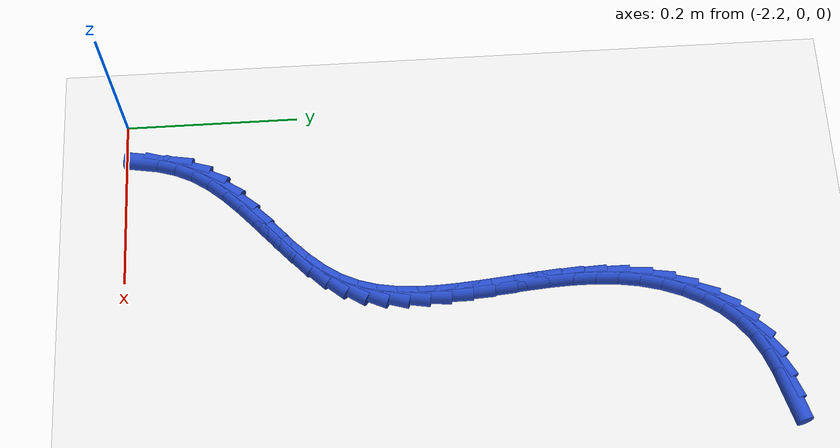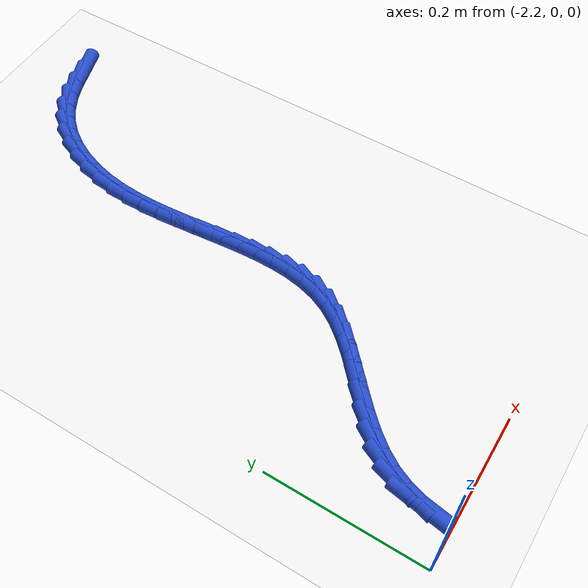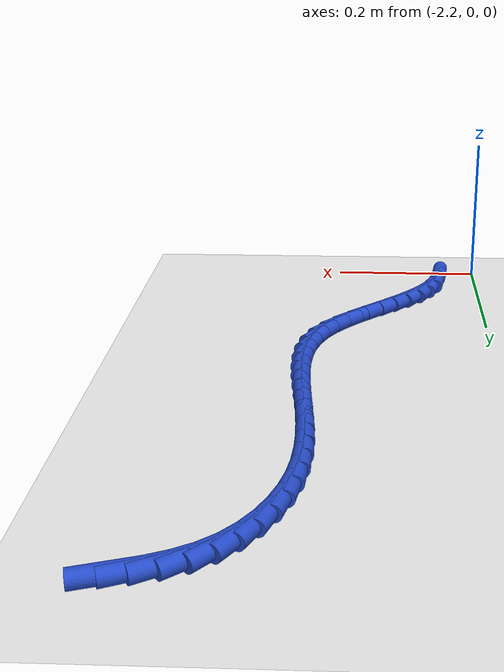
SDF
<sdf version="1.6">
 <world name="default">
  <model name="ground_plane">
   <static>1</static>
   <link name="link">
    <collision name="collision">
     <geometry><plane><normal>0 0 1</normal><size>100 100</size></plane></geometry>
     <surface><friction><ode><mu>100</mu><mu2>50</mu2></ode></friction></surface>
    </collision>
    <visual name="visual">
     <cast_shadows>0</cast_shadows>
     <geometry><plane><normal>0 0 1</normal><size>100 100</size></plane></geometry>
     <material>
      <script><uri>file://media/materials/scripts/gazebo.material</uri><name>Gazebo/WhiteGlow</name></script>
     </material>
    </visual>
   </link>
  </model>
  <model name="line">
   <link name="link_106">
    <pose>-1.8262738007283077 0.7350228807404822 0.01 0 1.57 0.2931317582532983</pose>
    <collision name="collision">
     <geometry><cylinder><radius>0.01</radius><length>0.08</length></cylinder></geometry>
    </collision>
    <visual name="visual">
     <material>
      <script><name>Gazebo/Blue</name><uri>file://media/materials/scripts/gazebo.material</uri></script>
     </material>
     <geometry><cylinder><radius>0.01</radius><length>0.08</length></cylinder></geometry>
    </visual>
   </link>
   <link name="link_107">
    <pose>-1.8500432478901638 0.7278486286046311 0.01 0 1.57 0.3802793211672357</pose>
    <collision name="collision">
     <geometry><cylinder><radius>0.01</radius><length>0.08</length></cylinder></geometry>
    </collision>
    <visual name="visual">
     <material>
      <script><name>Gazebo/Blue</name><uri>file://media/materials/scripts/gazebo.material</uri></script>
     </material>
     <geometry><cylinder><radius>0.01</radius><length>0.08</length></cylinder></geometry>
    </visual>
   </link>
   <link name="link_108">
    <pose>-1.87254807759557 0.7188526236165151 0.01 0 1.57 0.5021283102640395</pose>
    <collision name="collision">
     <geometry><cylinder><radius>0.01</radius><length>0.08</length></cylinder></geometry>
    </collision>
    <visual name="visual">
     <material>
      <script><name>Gazebo/Blue</name><uri>file://media/materials/scripts/gazebo.material</uri></script>
     </material>
     <geometry><cylinder><radius>0.01</radius><length>0.08</length></cylinder></geometry>
    </visual>
   </link>
   <link name="link_109">
    <pose>-1.8933521143064567 0.7074297676624985 0.01 0 1.57 0.6584751235820842</pose>
    <collision name="collision">
     <geometry><cylinder><radius>0.01</radius><length>0.08</length></cylinder></geometry>
    </collision>
    <visual name="visual">
     <material>
      <script><name>Gazebo/Blue</name><uri>file://media/materials/scripts/gazebo.material</uri></script>
     </material>
     <geometry><cylinder><radius>0.01</radius><length>0.08</length></cylinder></geometry>
    </visual>
   </link>
   <link name="link_110">
    <pose>-1.912022672366131 0.6929850209946814 0.01 0 1.57 0.8247620683680976</pose>
    <collision name="collision">
     <geometry><cylinder><radius>0.01</radius><length>0.08</length></cylinder></geometry>
    </collision>
    <visual name="visual">
     <material>
      <script><name>Gazebo/Blue</name><uri>file://media/materials/scripts/gazebo.material</uri></script>
     </material>
     <geometry><cylinder><radius>0.01</radius><length>0.08</length></cylinder></geometry>
    </visual>
   </link>
   <link name="link_111">
    <pose>-1.928287694915101 0.6753863003425892 0.01 0 1.57 0.9719357396712952</pose>
    <collision name="collision">
     <geometry><cylinder><radius>0.01</radius><length>0.08</length></cylinder></geometry>
    </collision>
    <visual name="visual">
     <material>
      <script><name>Gazebo/Blue</name><uri>file://media/materials/scripts/gazebo.material</uri></script>
     </material>
     <geometry><cylinder><radius>0.01</radius><length>0.08</length></cylinder></geometry>
    </visual>
   </link>
   <link name="link_112">
    <pose>-1.9420994982895001 0.6551481999063452 0.01 0 1.57 1.1010658770075152</pose>
    <collision name="collision">
     <geometry><cylinder><radius>0.01</radius><length>0.08</length></cylinder></geometry>
    </collision>
    <visual name="visual">
     <material>
      <script><name>Gazebo/Blue</name><uri>file://media/materials/scripts/gazebo.material</uri></script>
     </material>
     <geometry><cylinder><radius>0.01</radius><length>0.08</length></cylinder></geometry>
    </visual>
   </link>
   <link name="link_113">
    <pose>-1.9534270856727056 0.632833407902544 0.01 0 1.57 1.216574392342771</pose>
    <collision name="collision">
     <geometry><cylinder><radius>0.01</radius><length>0.08</length></cylinder></geometry>
    </collision>
    <visual name="visual">
     <material>
      <script><name>Gazebo/Blue</name><uri>file://media/materials/scripts/gazebo.material</uri></script>
     </material>
     <geometry><cylinder><radius>0.01</radius><length>0.08</length></cylinder></geometry>
    </visual>
   </link>
   <link name="link_114">
    <pose>-1.9622394602480935 0.6090046125477802 0.01 0 1.57 1.3231136990636463</pose>
    <collision name="collision">
     <geometry><cylinder><radius>0.01</radius><length>0.08</length></cylinder></geometry>
    </collision>
    <visual name="visual">
     <material>
      <script><name>Gazebo/Blue</name><uri>file://media/materials/scripts/gazebo.material</uri></script>
     </material>
     <geometry><cylinder><radius>0.01</radius><length>0.08</length></cylinder></geometry>
    </visual>
   </link>
   <link name="link_115">
    <pose>-1.9685057628454266 0.5842243663478205 0.01 0 1.57 1.4217417044040626</pose>
    <collision name="collision">
     <geometry><cylinder><radius>0.01</radius><length>0.08</length></cylinder></geometry>
    </collision>
    <visual name="visual">
     <material>
      <script><name>Gazebo/Blue</name><uri>file://media/materials/scripts/gazebo.material</uri></script>
     </material>
     <geometry><cylinder><radius>0.01</radius><length>0.08</length></cylinder></geometry>
    </visual>
   </link>
   <link name="link_116">
    <pose>-1.9723010548651658 0.5589507906756813 0.01 0 1.57 1.5047076153524919</pose>
    <collision name="collision">
     <geometry><cylinder><radius>0.01</radius><length>0.08</length></cylinder></geometry>
    </collision>
    <visual name="visual">
     <material>
      <script><name>Gazebo/Blue</name><uri>file://media/materials/scripts/gazebo.material</uri></script>
     </material>
     <geometry><cylinder><radius>0.01</radius><length>0.08</length></cylinder></geometry>
    </visual>
   </link>
   <link name="link_117">
    <pose>-1.9739953672865096 0.5333511851401824 0.01 0 1.57 1.5702420936253383</pose>
    <collision name="collision">
     <geometry><cylinder><radius>0.01</radius><length>0.08</length></cylinder></geometry>
    </collision>
    <visual name="visual">
     <material>
      <script><name>Gazebo/Blue</name><uri>file://media/materials/scripts/gazebo.material</uri></script>
     </material>
     <geometry><cylinder><radius>0.01</radius><length>0.08</length></cylinder></geometry>
    </visual>
   </link>
   <link name="link_118">
    <pose>-1.9740096712477835 0.5075426255033011 0.01 0 1.57 -1.5227748838769783</pose>
    <collision name="collision">
     <geometry><cylinder><radius>0.01</radius><length>0.08</length></cylinder></geometry>
    </collision>
    <visual name="visual">
     <material>
      <script><name>Gazebo/Blue</name><uri>file://media/materials/scripts/gazebo.material</uri></script>
     </material>
     <geometry><cylinder><radius>0.01</radius><length>0.08</length></cylinder></geometry>
    </visual>
   </link>
   <link name="link_119">
    <pose>-1.972764937887312 0.4816421875270134 0.01 0 1.57 -1.490475581346175</pose>
    <collision name="collision">
     <geometry><cylinder><radius>0.01</radius><length>0.08</length></cylinder></geometry>
    </collision>
    <visual name="visual">
     <material>
      <script><name>Gazebo/Blue</name><uri>file://media/materials/scripts/gazebo.material</uri></script>
     </material>
     <geometry><cylinder><radius>0.01</radius><length>0.08</length></cylinder></geometry>
    </visual>
   </link>
   <link name="link_120">
    <pose>-1.9706821383434205 0.45576694697329595 0.01 0 1.57 -1.4739526781380459</pose>
    <collision name="collision">
     <geometry><cylinder><radius>0.01</radius><length>0.08</length></cylinder></geometry>
    </collision>
    <visual name="visual">
     <material>
      <script><name>Gazebo/Blue</name><uri>file://media/materials/scripts/gazebo.material</uri></script>
     </material>
     <geometry><cylinder><radius>0.01</radius><length>0.08</length></cylinder></geometry>
    </visual>
   </link>
   <link name="link_121">
    <pose>-1.9681822437544352 0.43003397960412554 0.01 0 1.57 -1.4731236638331757</pose>
    <collision name="collision">
     <geometry><cylinder><radius>0.01</radius><length>0.08</length></cylinder></geometry>
    </collision>
    <visual name="visual">
     <material>
      <script><name>Gazebo/Blue</name><uri>file://media/materials/scripts/gazebo.material</uri></script>
     </material>
     <geometry><cylinder><radius>0.01</radius><length>0.08</length></cylinder></geometry>
    </visual>
   </link>
   <link name="link_122">
    <pose>-1.9656862252586809 0.4045603611814783 0.01 0 1.57 -1.4884569037032096</pose>
    <collision name="collision">
     <geometry><cylinder><radius>0.01</radius><length>0.08</length></cylinder></geometry>
    </collision>
    <visual name="visual">
     <material>
      <script><name>Gazebo/Blue</name><uri>file://media/materials/scripts/gazebo.material</uri></script>
     </material>
     <geometry><cylinder><radius>0.01</radius><length>0.08</length></cylinder></geometry>
    </visual>
   </link>
   <link name="link_123">
    <pose>-1.9636150539944828 0.37946316746733144 0.01 0 1.57 -1.521033827098376</pose>
    <collision name="collision">
     <geometry><cylinder><radius>0.01</radius><length>0.08</length></cylinder></geometry>
    </collision>
    <visual name="visual">
     <material>
      <script><name>Gazebo/Blue</name><uri>file://media/materials/scripts/gazebo.material</uri></script>
     </material>
     <geometry><cylinder><radius>0.01</radius><length>0.08</length></cylinder></geometry>
    </visual>
   </link>
   <link name="link_124">
    <pose>-1.9623897011001663 0.3548594742236613 0.01 0 1.57 1.5690693076387285</pose>
    <collision name="collision">
     <geometry><cylinder><radius>0.01</radius><length>0.08</length></cylinder></geometry>
    </collision>
    <visual name="visual">
     <material>
      <script><name>Gazebo/Blue</name><uri>file://media/materials/scripts/gazebo.material</uri></script>
     </material>
     <geometry><cylinder><radius>0.01</radius><length>0.08</length></cylinder></geometry>
    </visual>
   </link>
   <link name="link_125">
    <pose>-1.962431137714057 0.3308663572124445 0.01 0 1.57 1.4966080973572227</pose>
    <collision name="collision">
     <geometry><cylinder><radius>0.01</radius><length>0.08</length></cylinder></geometry>
    </collision>
    <visual name="visual">
     <material>
      <script><name>Gazebo/Blue</name><uri>file://media/materials/scripts/gazebo.material</uri></script>
     </material>
     <geometry><cylinder><radius>0.01</radius><length>0.08</length></cylinder></geometry>
    </visual>
   </link>
   <link name="link_126">
    <pose>-1.9641603349744805 0.3076008921956573 0.01 0 1.57 1.4012618239809915</pose>
    <collision name="collision">
     <geometry><cylinder><radius>0.01</radius><length>0.08</length></cylinder></geometry>
    </collision>
    <visual name="visual">
     <material>
      <script><name>Gazebo/Blue</name><uri>file://media/materials/scripts/gazebo.material</uri></script>
     </material>
     <geometry><cylinder><radius>0.01</radius><length>0.08</length></cylinder></geometry>
    </visual>
   </link>
   <link name="link_127">
    <pose>-1.9679982640197615 0.2851801549352769 0.01 0 1.57 1.282336976577405</pose>
    <collision name="collision">
     <geometry><cylinder><radius>0.01</radius><length>0.08</length></cylinder></geometry>
    </collision>
    <visual name="visual">
     <material>
      <script><name>Gazebo/Blue</name><uri>file://media/materials/scripts/gazebo.material</uri></script>
     </material>
     <geometry><cylinder><radius>0.01</radius><length>0.08</length></cylinder></geometry>
    </visual>
   </link>
   <link name="link_128">
    <pose>-1.9743658959882264 0.26372122119327973 0.01 0 1.57 1.141948911566661</pose>
    <collision name="collision">
     <geometry><cylinder><radius>0.01</radius><length>0.08</length></cylinder></geometry>
    </collision>
    <visual name="visual">
     <material>
      <script><name>Gazebo/Blue</name><uri>file://media/materials/scripts/gazebo.material</uri></script>
     </material>
     <geometry><cylinder><radius>0.01</radius><length>0.08</length></cylinder></geometry>
    </visual>
   </link>
   <link name="link_129">
    <pose>-1.9836842020181993 0.24334116673164213 0.01 0 1.57 0.9922831039997676</pose>
    <collision name="collision">
     <geometry><cylinder><radius>0.01</radius><length>0.08</length></cylinder></geometry>
    </collision>
    <visual name="visual">
     <material>
      <script><name>Gazebo/Blue</name><uri>file://media/materials/scripts/gazebo.material</uri></script>
     </material>
     <geometry><cylinder><radius>0.01</radius><length>0.08</length></cylinder></geometry>
    </visual>
   </link>
   <link name="link_130">
    <pose>-1.9962411709592875 0.22411284638877618 0.01 0 1.57 0.873433738426912</pose>
    <collision name="collision">
     <geometry><cylinder><radius>0.01</radius><length>0.08</length></cylinder></geometry>
    </collision>
    <visual name="visual">
     <material>
      <script><name>Gazebo/Blue</name><uri>file://media/materials/scripts/gazebo.material</uri></script>
     </material>
     <geometry><cylinder><radius>0.01</radius><length>0.08</length></cylinder></geometry>
    </visual>
   </link>
   <link name="link_131">
    <pose>-2.0115424645211335 0.20584896585847867 0.01 0 1.57 0.7944491096093557</pose>
    <collision name="collision">
     <geometry><cylinder><radius>0.01</radius><length>0.08</length></cylinder></geometry>
    </collision>
    <visual name="visual">
     <material>
      <script><name>Gazebo/Blue</name><uri>file://media/materials/scripts/gazebo.material</uri></script>
     </material>
     <geometry><cylinder><radius>0.01</radius><length>0.08</length></cylinder></geometry>
    </visual>
   </link>
   <link name="link_132">
    <pose>-2.0288086045769083 0.18826741259194338 0.01 0 1.57 0.7497823899017034</pose>
    <collision name="collision">
     <geometry><cylinder><radius>0.01</radius><length>0.08</length></cylinder></geometry>
    </collision>
    <visual name="visual">
     <material>
      <script><name>Gazebo/Blue</name><uri>file://media/materials/scripts/gazebo.material</uri></script>
     </material>
     <geometry><cylinder><radius>0.01</radius><length>0.08</length></cylinder></geometry>
    </visual>
   </link>
   <link name="link_133">
    <pose>-2.0472596991813012 0.17108593643229703 0.01 0 1.57 0.7355364735276259</pose>
    <collision name="collision">
     <geometry><cylinder><radius>0.01</radius><length>0.08</length></cylinder></geometry>
    </collision>
    <visual name="visual">
     <material>
      <script><name>Gazebo/Blue</name><uri>file://media/materials/scripts/gazebo.material</uri></script>
     </material>
     <geometry><cylinder><radius>0.01</radius><length>0.08</length></cylinder></geometry>
    </visual>
   </link>
   <link name="link_134">
    <pose>-2.066115856388999 0.1540222872226664 0.01 0 1.57 0.750316608863005</pose>
    <collision name="collision">
     <geometry><cylinder><radius>0.01</radius><length>0.08</length></cylinder></geometry>
    </collision>
    <visual name="visual">
     <material>
      <script><name>Gazebo/Blue</name><uri>file://media/materials/scripts/gazebo.material</uri></script>
     </material>
     <geometry><cylinder><radius>0.01</radius><length>0.08</length></cylinder></geometry>
    </visual>
   </link>
   <link name="link_135">
    <pose>-2.0845971842546898 0.13679421480617823 0.01 0 1.57 0.7953442854293984</pose>
    <collision name="collision">
     <geometry><cylinder><radius>0.01</radius><length>0.08</length></cylinder></geometry>
    </collision>
    <visual name="visual">
     <material>
      <script><name>Gazebo/Blue</name><uri>file://media/materials/scripts/gazebo.material</uri></script>
     </material>
     <geometry><cylinder><radius>0.01</radius><length>0.08</length></cylinder></geometry>
    </visual>
   </link>
   <link name="link_136">
    <pose>-2.1019237908330606 0.11911946902595985 0.01 0 1.57 0.8742776594777698</pose>
    <collision name="collision">
     <geometry><cylinder><radius>0.01</radius><length>0.08</length></cylinder></geometry>
    </collision>
    <visual name="visual">
     <material>
      <script><name>Gazebo/Blue</name><uri>file://media/materials/scripts/gazebo.material</uri></script>
     </material>
     <geometry><cylinder><radius>0.01</radius><length>0.08</length></cylinder></geometry>
    </visual>
   </link>
   <link name="link_137">
    <pose>-2.1173157841787997 0.10071579972513799 0.01 0 1.57 0.9922075046082314</pose>
    <collision name="collision">
     <geometry><cylinder><radius>0.01</radius><length>0.08</length></cylinder></geometry>
    </collision>
    <visual name="visual">
     <material>
      <script><name>Gazebo/Blue</name><uri>file://media/materials/scripts/gazebo.material</uri></script>
     </material>
     <geometry><cylinder><radius>0.01</radius><length>0.08</length></cylinder></geometry>
    </visual>
   </link>
   <link name="link_138">
    <pose>-2.12999593663966 0.08130205612001028 0.01 0 1.57 1.137888033036258</pose>
    <collision name="collision">
     <geometry><cylinder><radius>0.01</radius><length>0.08</length></cylinder></geometry>
    </collision>
    <visual name="visual">
     <material>
      <script><name>Gazebo/Blue</name><uri>file://media/materials/scripts/gazebo.material</uri></script>
     </material>
     <geometry><cylinder><radius>0.01</radius><length>0.08</length></cylinder></geometry>
    </visual>
   </link>
   <link name="link_139">
    <pose>-2.13950417042334 0.06072795367860752 0.01 0 1.57 1.2793448057240653</pose>
    <collision name="collision">
     <geometry><cylinder><radius>0.01</radius><length>0.08</length></cylinder></geometry>
    </collision>
    <visual name="visual">
     <material>
      <script><name>Gazebo/Blue</name><uri>file://media/materials/scripts/gazebo.material</uri></script>
     </material>
     <geometry><cylinder><radius>0.01</radius><length>0.08</length></cylinder></geometry>
    </visual>
   </link>
   <link name="link_140">
    <pose>-2.145993567040983 0.03909621715539608 0.01 0 1.57 1.408492374029531</pose>
    <collision name="collision">
     <geometry><cylinder><radius>0.01</radius><length>0.08</length></cylinder></geometry>
    </collision>
    <visual name="visual">
     <material>
      <script><name>Gazebo/Blue</name><uri>file://media/materials/scripts/gazebo.material</uri></script>
     </material>
     <geometry><cylinder><radius>0.01</radius><length>0.08</length></cylinder></geometry>
    </visual>
   </link>
  </model>
 </world>
</sdf>
